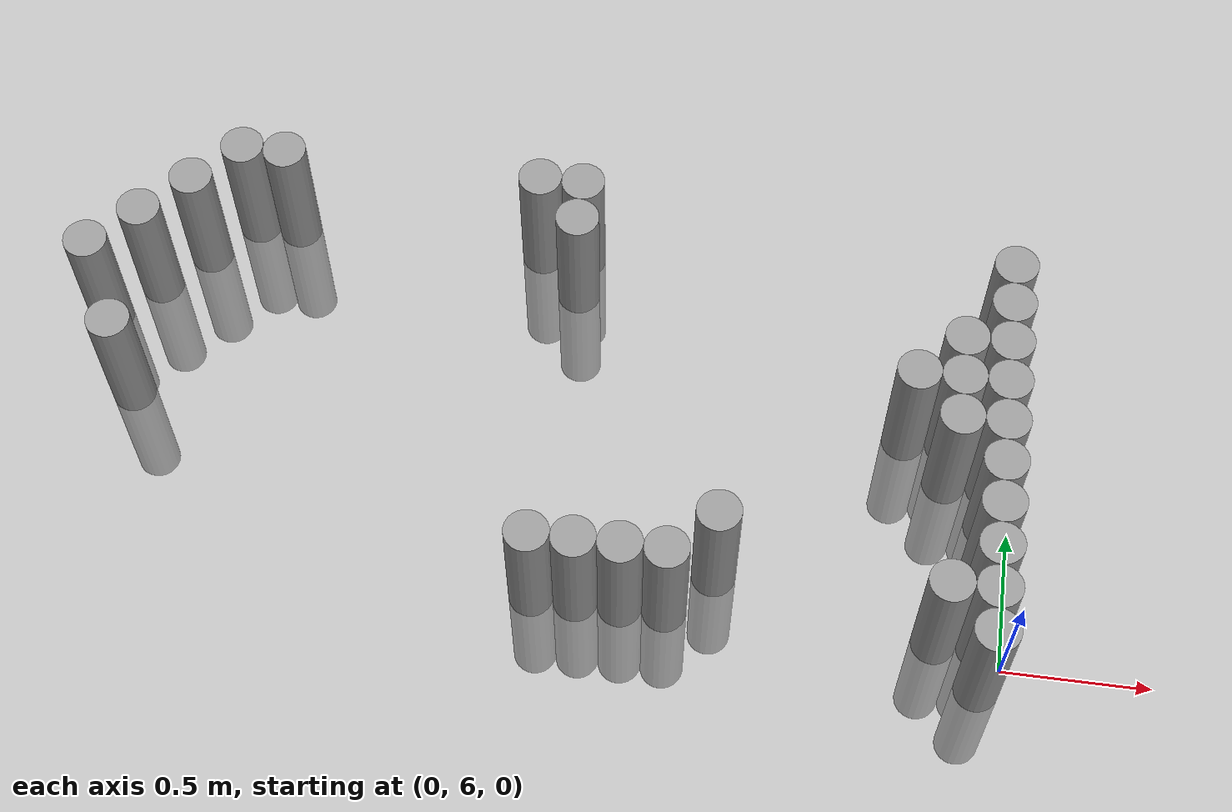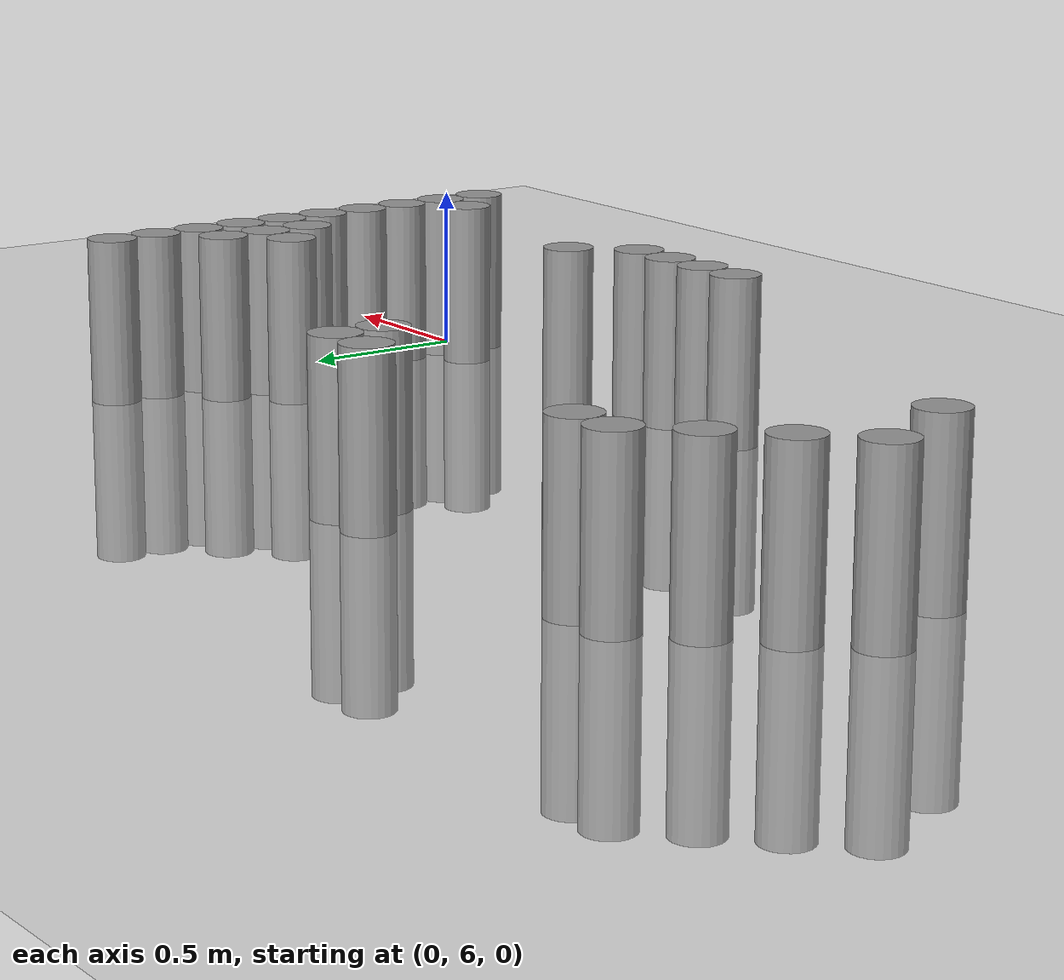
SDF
<sdf version="1.6">
 <world name="default">
  <model name="ground_plane">
   <static>1</static>
   <static>1</static>
   <link name="link">
    <collision name="collision">
     <geometry><plane><normal>0 0 1</normal><size>100 100</size></plane></geometry>
     <surface><friction><ode><mu>100</mu><mu2>50</mu2></ode></friction></surface>
    </collision>
    <visual name="visual">
     <cast_shadows>0</cast_shadows>
     <geometry><plane><normal>0 0 1</normal><size>100 100</size></plane></geometry>
     <material>
      <script><uri>file://media/materials/scripts/gazebo.material</uri><name>Gazebo/Grey</name></script>
     </material>
    </visual>
   </link>
  </model>
  <model name="unit_cylinder_161">
   <static>1</static>
   <pose>-3.225000 6.975000 0.000000 0.000000 0.000000 0.000000</pose>
   <link name="link">
    <inertial>
     <mass>1</mass>
     <inertia><ixx>0.145833</ixx><ixy>0</ixy><ixz>0</ixz><iyy>0.145833</iyy><iyz>0</iyz><izz>0.125</izz></inertia>
    </inertial>
    <collision name="collision">
     <geometry><cylinder><radius>0.075000</radius><length>1</length></cylinder></geometry>
    </collision>
    <visual name="visual">
     <geometry><cylinder><radius>0.075000</radius><length>1</length></cylinder></geometry>
     <material>
      <script><name>Gazebo/Grey</name><uri>file://media/materials/scripts/gazebo.material</uri></script>
     </material>
    </visual>
   </link>
  </model>
  <model name="unit_cylinder_162">
   <static>1</static>
   <pose>-3.075000 6.675000 0.000000 0.000000 0.000000 0.000000</pose>
   <link name="link">
    <inertial>
     <mass>1</mass>
     <inertia><ixx>0.145833</ixx><ixy>0</ixy><ixz>0</ixz><iyy>0.145833</iyy><iyz>0</iyz><izz>0.125</izz></inertia>
    </inertial>
    <collision name="collision">
     <geometry><cylinder><radius>0.075000</radius><length>1</length></cylinder></geometry>
    </collision>
    <visual name="visual">
     <geometry><cylinder><radius>0.075000</radius><length>1</length></cylinder></geometry>
     <material>
      <script><name>Gazebo/Grey</name><uri>file://media/materials/scripts/gazebo.material</uri></script>
     </material>
    </visual>
   </link>
  </model>
  <model name="unit_cylinder_163">
   <static>1</static>
   <pose>-3.075000 7.125000 0.000000 0.000000 0.000000 0.000000</pose>
   <link name="link">
    <inertial>
     <mass>1</mass>
     <inertia><ixx>0.145833</ixx><ixy>0</ixy><ixz>0</ixz><iyy>0.145833</iyy><iyz>0</iyz><izz>0.125</izz></inertia>
    </inertial>
    <collision name="collision">
     <geometry><cylinder><radius>0.075000</radius><length>1</length></cylinder></geometry>
    </collision>
    <visual name="visual">
     <geometry><cylinder><radius>0.075000</radius><length>1</length></cylinder></geometry>
     <material>
      <script><name>Gazebo/Grey</name><uri>file://media/materials/scripts/gazebo.material</uri></script>
     </material>
    </visual>
   </link>
  </model>
  <model name="unit_cylinder_164">
   <static>1</static>
   <pose>-2.925000 7.275000 0.000000 0.000000 0.000000 0.000000</pose>
   <link name="link">
    <inertial>
     <mass>1</mass>
     <inertia><ixx>0.145833</ixx><ixy>0</ixy><ixz>0</ixz><iyy>0.145833</iyy><iyz>0</iyz><izz>0.125</izz></inertia>
    </inertial>
    <collision name="collision">
     <geometry><cylinder><radius>0.075000</radius><length>1</length></cylinder></geometry>
    </collision>
    <visual name="visual">
     <geometry><cylinder><radius>0.075000</radius><length>1</length></cylinder></geometry>
     <material>
      <script><name>Gazebo/Grey</name><uri>file://media/materials/scripts/gazebo.material</uri></script>
     </material>
    </visual>
   </link>
  </model>
  <model name="unit_cylinder_165">
   <static>1</static>
   <pose>-2.775000 7.425000 0.000000 0.000000 0.000000 0.000000</pose>
   <link name="link">
    <inertial>
     <mass>1</mass>
     <inertia><ixx>0.145833</ixx><ixy>0</ixy><ixz>0</ixz><iyy>0.145833</iyy><iyz>0</iyz><izz>0.125</izz></inertia>
    </inertial>
    <collision name="collision">
     <geometry><cylinder><radius>0.075000</radius><length>1</length></cylinder></geometry>
    </collision>
    <visual name="visual">
     <geometry><cylinder><radius>0.075000</radius><length>1</length></cylinder></geometry>
     <material>
      <script><name>Gazebo/Grey</name><uri>file://media/materials/scripts/gazebo.material</uri></script>
     </material>
    </visual>
   </link>
  </model>
  <model name="unit_cylinder_166">
   <static>1</static>
   <pose>-2.625000 7.425000 0.000000 0.000000 0.000000 0.000000</pose>
   <link name="link">
    <inertial>
     <mass>1</mass>
     <inertia><ixx>0.145833</ixx><ixy>0</ixy><ixz>0</ixz><iyy>0.145833</iyy><iyz>0</iyz><izz>0.125</izz></inertia>
    </inertial>
    <collision name="collision">
     <geometry><cylinder><radius>0.075000</radius><length>1</length></cylinder></geometry>
    </collision>
    <visual name="visual">
     <geometry><cylinder><radius>0.075000</radius><length>1</length></cylinder></geometry>
     <material>
      <script><name>Gazebo/Grey</name><uri>file://media/materials/scripts/gazebo.material</uri></script>
     </material>
    </visual>
   </link>
  </model>
  <model name="unit_cylinder_181">
   <static>1</static>
   <pose>-1.725000 7.425000 0.000000 0.000000 0.000000 0.000000</pose>
   <link name="link">
    <inertial>
     <mass>1</mass>
     <inertia><ixx>0.145833</ixx><ixy>0</ixy><ixz>0</ixz><iyy>0.145833</iyy><iyz>0</iyz><izz>0.125</izz></inertia>
    </inertial>
    <collision name="collision">
     <geometry><cylinder><radius>0.075000</radius><length>1</length></cylinder></geometry>
    </collision>
    <visual name="visual">
     <geometry><cylinder><radius>0.075000</radius><length>1</length></cylinder></geometry>
     <material>
      <script><name>Gazebo/Grey</name><uri>file://media/materials/scripts/gazebo.material</uri></script>
     </material>
    </visual>
   </link>
  </model>
  <model name="unit_cylinder_183">
   <static>1</static>
   <pose>-1.575000 6.075000 0.000000 0.000000 0.000000 0.000000</pose>
   <link name="link">
    <inertial>
     <mass>1</mass>
     <inertia><ixx>0.145833</ixx><ixy>0</ixy><ixz>0</ixz><iyy>0.145833</iyy><iyz>0</iyz><izz>0.125</izz></inertia>
    </inertial>
    <collision name="collision">
     <geometry><cylinder><radius>0.075000</radius><length>1</length></cylinder></geometry>
    </collision>
    <visual name="visual">
     <geometry><cylinder><radius>0.075000</radius><length>1</length></cylinder></geometry>
     <material>
      <script><name>Gazebo/Grey</name><uri>file://media/materials/scripts/gazebo.material</uri></script>
     </material>
    </visual>
   </link>
  </model>
  <model name="unit_cylinder_184">
   <static>1</static>
   <pose>-1.575000 7.275000 0.000000 0.000000 0.000000 0.000000</pose>
   <link name="link">
    <inertial>
     <mass>1</mass>
     <inertia><ixx>0.145833</ixx><ixy>0</ixy><ixz>0</ixz><iyy>0.145833</iyy><iyz>0</iyz><izz>0.125</izz></inertia>
    </inertial>
    <collision name="collision">
     <geometry><cylinder><radius>0.075000</radius><length>1</length></cylinder></geometry>
    </collision>
    <visual name="visual">
     <geometry><cylinder><radius>0.075000</radius><length>1</length></cylinder></geometry>
     <material>
      <script><name>Gazebo/Grey</name><uri>file://media/materials/scripts/gazebo.material</uri></script>
     </material>
    </visual>
   </link>
  </model>
  <model name="unit_cylinder_185">
   <static>1</static>
   <pose>-1.575000 7.425000 0.000000 0.000000 0.000000 0.000000</pose>
   <link name="link">
    <inertial>
     <mass>1</mass>
     <inertia><ixx>0.145833</ixx><ixy>0</ixy><ixz>0</ixz><iyy>0.145833</iyy><iyz>0</iyz><izz>0.125</izz></inertia>
    </inertial>
    <collision name="collision">
     <geometry><cylinder><radius>0.075000</radius><length>1</length></cylinder></geometry>
    </collision>
    <visual name="visual">
     <geometry><cylinder><radius>0.075000</radius><length>1</length></cylinder></geometry>
     <material>
      <script><name>Gazebo/Grey</name><uri>file://media/materials/scripts/gazebo.material</uri></script>
     </material>
    </visual>
   </link>
  </model>
  <model name="unit_cylinder_188">
   <static>1</static>
   <pose>-1.425000 6.075000 0.000000 0.000000 0.000000 0.000000</pose>
   <link name="link">
    <inertial>
     <mass>1</mass>
     <inertia><ixx>0.145833</ixx><ixy>0</ixy><ixz>0</ixz><iyy>0.145833</iyy><iyz>0</iyz><izz>0.125</izz></inertia>
    </inertial>
    <collision name="collision">
     <geometry><cylinder><radius>0.075000</radius><length>1</length></cylinder></geometry>
    </collision>
    <visual name="visual">
     <geometry><cylinder><radius>0.075000</radius><length>1</length></cylinder></geometry>
     <material>
      <script><name>Gazebo/Grey</name><uri>file://media/materials/scripts/gazebo.material</uri></script>
     </material>
    </visual>
   </link>
  </model>
  <model name="unit_cylinder_192">
   <static>1</static>
   <pose>-1.275000 6.075000 0.000000 0.000000 0.000000 0.000000</pose>
   <link name="link">
    <inertial>
     <mass>1</mass>
     <inertia><ixx>0.145833</ixx><ixy>0</ixy><ixz>0</ixz><iyy>0.145833</iyy><iyz>0</iyz><izz>0.125</izz></inertia>
    </inertial>
    <collision name="collision">
     <geometry><cylinder><radius>0.075000</radius><length>1</length></cylinder></geometry>
    </collision>
    <visual name="visual">
     <geometry><cylinder><radius>0.075000</radius><length>1</length></cylinder></geometry>
     <material>
      <script><name>Gazebo/Grey</name><uri>file://media/materials/scripts/gazebo.material</uri></script>
     </material>
    </visual>
   </link>
  </model>
  <model name="unit_cylinder_193">
   <static>1</static>
   <pose>-1.125000 6.075000 0.000000 0.000000 0.000000 0.000000</pose>
   <link name="link">
    <inertial>
     <mass>1</mass>
     <inertia><ixx>0.145833</ixx><ixy>0</ixy><ixz>0</ixz><iyy>0.145833</iyy><iyz>0</iyz><izz>0.125</izz></inertia>
    </inertial>
    <collision name="collision">
     <geometry><cylinder><radius>0.075000</radius><length>1</length></cylinder></geometry>
    </collision>
    <visual name="visual">
     <geometry><cylinder><radius>0.075000</radius><length>1</length></cylinder></geometry>
     <material>
      <script><name>Gazebo/Grey</name><uri>file://media/materials/scripts/gazebo.material</uri></script>
     </material>
    </visual>
   </link>
  </model>
  <model name="unit_cylinder_194">
   <static>1</static>
   <pose>-0.975000 6.225000 0.000000 0.000000 0.000000 0.000000</pose>
   <link name="link">
    <inertial>
     <mass>1</mass>
     <inertia><ixx>0.145833</ixx><ixy>0</ixy><ixz>0</ixz><iyy>0.145833</iyy><iyz>0</iyz><izz>0.125</izz></inertia>
    </inertial>
    <collision name="collision">
     <geometry><cylinder><radius>0.075000</radius><length>1</length></cylinder></geometry>
    </collision>
    <visual name="visual">
     <geometry><cylinder><radius>0.075000</radius><length>1</length></cylinder></geometry>
     <material>
      <script><name>Gazebo/Grey</name><uri>file://media/materials/scripts/gazebo.material</uri></script>
     </material>
    </visual>
   </link>
  </model>
  <model name="unit_cylinder_195">
   <static>1</static>
   <pose>-0.375000 6.825000 0.000000 0.000000 0.000000 0.000000</pose>
   <link name="link">
    <inertial>
     <mass>1</mass>
     <inertia><ixx>0.145833</ixx><ixy>0</ixy><ixz>0</ixz><iyy>0.145833</iyy><iyz>0</iyz><izz>0.125</izz></inertia>
    </inertial>
    <collision name="collision">
     <geometry><cylinder><radius>0.075000</radius><length>1</length></cylinder></geometry>
    </collision>
    <visual name="visual">
     <geometry><cylinder><radius>0.075000</radius><length>1</length></cylinder></geometry>
     <material>
      <script><name>Gazebo/Grey</name><uri>file://media/materials/scripts/gazebo.material</uri></script>
     </material>
    </visual>
   </link>
  </model>
  <model name="unit_cylinder_196">
   <static>1</static>
   <pose>-0.225000 6.075000 0.000000 0.000000 0.000000 0.000000</pose>
   <link name="link">
    <inertial>
     <mass>1</mass>
     <inertia><ixx>0.145833</ixx><ixy>0</ixy><ixz>0</ixz><iyy>0.145833</iyy><iyz>0</iyz><izz>0.125</izz></inertia>
    </inertial>
    <collision name="collision">
     <geometry><cylinder><radius>0.075000</radius><length>1</length></cylinder></geometry>
    </collision>
    <visual name="visual">
     <geometry><cylinder><radius>0.075000</radius><length>1</length></cylinder></geometry>
     <material>
      <script><name>Gazebo/Grey</name><uri>file://media/materials/scripts/gazebo.material</uri></script>
     </material>
    </visual>
   </link>
  </model>
  <model name="unit_cylinder_197">
   <static>1</static>
   <pose>-0.225000 6.675000 0.000000 0.000000 0.000000 0.000000</pose>
   <link name="link">
    <inertial>
     <mass>1</mass>
     <inertia><ixx>0.145833</ixx><ixy>0</ixy><ixz>0</ixz><iyy>0.145833</iyy><iyz>0</iyz><izz>0.125</izz></inertia>
    </inertial>
    <collision name="collision">
     <geometry><cylinder><radius>0.075000</radius><length>1</length></cylinder></geometry>
    </collision>
    <visual name="visual">
     <geometry><cylinder><radius>0.075000</radius><length>1</length></cylinder></geometry>
     <material>
      <script><name>Gazebo/Grey</name><uri>file://media/materials/scripts/gazebo.material</uri></script>
     </material>
    </visual>
   </link>
  </model>
  <model name="unit_cylinder_198">
   <static>1</static>
   <pose>-0.225000 6.825000 0.000000 0.000000 0.000000 0.000000</pose>
   <link name="link">
    <inertial>
     <mass>1</mass>
     <inertia><ixx>0.145833</ixx><ixy>0</ixy><ixz>0</ixz><iyy>0.145833</iyy><iyz>0</iyz><izz>0.125</izz></inertia>
    </inertial>
    <collision name="collision">
     <geometry><cylinder><radius>0.075000</radius><length>1</length></cylinder></geometry>
    </collision>
    <visual name="visual">
     <geometry><cylinder><radius>0.075000</radius><length>1</length></cylinder></geometry>
     <material>
      <script><name>Gazebo/Grey</name><uri>file://media/materials/scripts/gazebo.material</uri></script>
     </material>
    </visual>
   </link>
  </model>
  <model name="unit_cylinder_199">
   <static>1</static>
   <pose>-0.225000 6.975000 0.000000 0.000000 0.000000 0.000000</pose>
   <link name="link">
    <inertial>
     <mass>1</mass>
     <inertia><ixx>0.145833</ixx><ixy>0</ixy><ixz>0</ixz><iyy>0.145833</iyy><iyz>0</iyz><izz>0.125</izz></inertia>
    </inertial>
    <collision name="collision">
     <geometry><cylinder><radius>0.075000</radius><length>1</length></cylinder></geometry>
    </collision>
    <visual name="visual">
     <geometry><cylinder><radius>0.075000</radius><length>1</length></cylinder></geometry>
     <material>
      <script><name>Gazebo/Grey</name><uri>file://media/materials/scripts/gazebo.material</uri></script>
     </material>
    </visual>
   </link>
  </model>
  <model name="unit_cylinder_210">
   <static>1</static>
   <pose>-0.075000 5.925000 0.000000 0.000000 0.000000 0.000000</pose>
   <link name="link">
    <inertial>
     <mass>1</mass>
     <inertia><ixx>0.145833</ixx><ixy>0</ixy><ixz>0</ixz><iyy>0.145833</iyy><iyz>0</iyz><izz>0.125</izz></inertia>
    </inertial>
    <collision name="collision">
     <geometry><cylinder><radius>0.075000</radius><length>1</length></cylinder></geometry>
    </collision>
    <visual name="visual">
     <geometry><cylinder><radius>0.075000</radius><length>1</length></cylinder></geometry>
     <material>
      <script><name>Gazebo/Grey</name><uri>file://media/materials/scripts/gazebo.material</uri></script>
     </material>
    </visual>
   </link>
  </model>
  <model name="unit_cylinder_211">
   <static>1</static>
   <pose>-0.075000 6.075000 0.000000 0.000000 0.000000 0.000000</pose>
   <link name="link">
    <inertial>
     <mass>1</mass>
     <inertia><ixx>0.145833</ixx><ixy>0</ixy><ixz>0</ixz><iyy>0.145833</iyy><iyz>0</iyz><izz>0.125</izz></inertia>
    </inertial>
    <collision name="collision">
     <geometry><cylinder><radius>0.075000</radius><length>1</length></cylinder></geometry>
    </collision>
    <visual name="visual">
     <geometry><cylinder><radius>0.075000</radius><length>1</length></cylinder></geometry>
     <material>
      <script><name>Gazebo/Grey</name><uri>file://media/materials/scripts/gazebo.material</uri></script>
     </material>
    </visual>
   </link>
  </model>
  <model name="unit_cylinder_212">
   <static>1</static>
   <pose>-0.075000 6.225000 0.000000 0.000000 0.000000 0.000000</pose>
   <link name="link">
    <inertial>
     <mass>1</mass>
     <inertia><ixx>0.145833</ixx><ixy>0</ixy><ixz>0</ixz><iyy>0.145833</iyy><iyz>0</iyz><izz>0.125</izz></inertia>
    </inertial>
    <collision name="collision">
     <geometry><cylinder><radius>0.075000</radius><length>1</length></cylinder></geometry>
    </collision>
    <visual name="visual">
     <geometry><cylinder><radius>0.075000</radius><length>1</length></cylinder></geometry>
     <material>
      <script><name>Gazebo/Grey</name><uri>file://media/materials/scripts/gazebo.material</uri></script>
     </material>
    </visual>
   </link>
  </model>
  <model name="unit_cylinder_213">
   <static>1</static>
   <pose>-0.075000 6.375000 0.000000 0.000000 0.000000 0.000000</pose>
   <link name="link">
    <inertial>
     <mass>1</mass>
     <inertia><ixx>0.145833</ixx><ixy>0</ixy><ixz>0</ixz><iyy>0.145833</iyy><iyz>0</iyz><izz>0.125</izz></inertia>
    </inertial>
    <collision name="collision">
     <geometry><cylinder><radius>0.075000</radius><length>1</length></cylinder></geometry>
    </collision>
    <visual name="visual">
     <geometry><cylinder><radius>0.075000</radius><length>1</length></cylinder></geometry>
     <material>
      <script><name>Gazebo/Grey</name><uri>file://media/materials/scripts/gazebo.material</uri></script>
     </material>
    </visual>
   </link>
  </model>
  <model name="unit_cylinder_214">
   <static>1</static>
   <pose>-0.075000 6.525000 0.000000 0.000000 0.000000 0.000000</pose>
   <link name="link">
    <inertial>
     <mass>1</mass>
     <inertia><ixx>0.145833</ixx><ixy>0</ixy><ixz>0</ixz><iyy>0.145833</iyy><iyz>0</iyz><izz>0.125</izz></inertia>
    </inertial>
    <collision name="collision">
     <geometry><cylinder><radius>0.075000</radius><length>1</length></cylinder></geometry>
    </collision>
    <visual name="visual">
     <geometry><cylinder><radius>0.075000</radius><length>1</length></cylinder></geometry>
     <material>
      <script><name>Gazebo/Grey</name><uri>file://media/materials/scripts/gazebo.material</uri></script>
     </material>
    </visual>
   </link>
  </model>
  <model name="unit_cylinder_215">
   <static>1</static>
   <pose>-0.075000 6.675000 0.000000 0.000000 0.000000 0.000000</pose>
   <link name="link">
    <inertial>
     <mass>1</mass>
     <inertia><ixx>0.145833</ixx><ixy>0</ixy><ixz>0</ixz><iyy>0.145833</iyy><iyz>0</iyz><izz>0.125</izz></inertia>
    </inertial>
    <collision name="collision">
     <geometry><cylinder><radius>0.075000</radius><length>1</length></cylinder></geometry>
    </collision>
    <visual name="visual">
     <geometry><cylinder><radius>0.075000</radius><length>1</length></cylinder></geometry>
     <material>
      <script><name>Gazebo/Grey</name><uri>file://media/materials/scripts/gazebo.material</uri></script>
     </material>
    </visual>
   </link>
  </model>
  <model name="unit_cylinder_216">
   <static>1</static>
   <pose>-0.075000 6.825000 0.000000 0.000000 0.000000 0.000000</pose>
   <link name="link">
    <inertial>
     <mass>1</mass>
     <inertia><ixx>0.145833</ixx><ixy>0</ixy><ixz>0</ixz><iyy>0.145833</iyy><iyz>0</iyz><izz>0.125</izz></inertia>
    </inertial>
    <collision name="collision">
     <geometry><cylinder><radius>0.075000</radius><length>1</length></cylinder></geometry>
    </collision>
    <visual name="visual">
     <geometry><cylinder><radius>0.075000</radius><length>1</length></cylinder></geometry>
     <material>
      <script><name>Gazebo/Grey</name><uri>file://media/materials/scripts/gazebo.material</uri></script>
     </material>
    </visual>
   </link>
  </model>
  <model name="unit_cylinder_217">
   <static>1</static>
   <pose>-0.075000 6.975000 0.000000 0.000000 0.000000 0.000000</pose>
   <link name="link">
    <inertial>
     <mass>1</mass>
     <inertia><ixx>0.145833</ixx><ixy>0</ixy><ixz>0</ixz><iyy>0.145833</iyy><iyz>0</iyz><izz>0.125</izz></inertia>
    </inertial>
    <collision name="collision">
     <geometry><cylinder><radius>0.075000</radius><length>1</length></cylinder></geometry>
    </collision>
    <visual name="visual">
     <geometry><cylinder><radius>0.075000</radius><length>1</length></cylinder></geometry>
     <material>
      <script><name>Gazebo/Grey</name><uri>file://media/materials/scripts/gazebo.material</uri></script>
     </material>
    </visual>
   </link>
  </model>
  <model name="unit_cylinder_218">
   <static>1</static>
   <pose>-0.075000 7.125000 0.000000 0.000000 0.000000 0.000000</pose>
   <link name="link">
    <inertial>
     <mass>1</mass>
     <inertia><ixx>0.145833</ixx><ixy>0</ixy><ixz>0</ixz><iyy>0.145833</iyy><iyz>0</iyz><izz>0.125</izz></inertia>
    </inertial>
    <collision name="collision">
     <geometry><cylinder><radius>0.075000</radius><length>1</length></cylinder></geometry>
    </collision>
    <visual name="visual">
     <geometry><cylinder><radius>0.075000</radius><length>1</length></cylinder></geometry>
     <material>
      <script><name>Gazebo/Grey</name><uri>file://media/materials/scripts/gazebo.material</uri></script>
     </material>
    </visual>
   </link>
  </model>
  <model name="unit_cylinder_219">
   <static>1</static>
   <pose>-0.075000 7.275000 0.000000 0.000000 0.000000 0.000000</pose>
   <link name="link">
    <inertial>
     <mass>1</mass>
     <inertia><ixx>0.145833</ixx><ixy>0</ixy><ixz>0</ixz><iyy>0.145833</iyy><iyz>0</iyz><izz>0.125</izz></inertia>
    </inertial>
    <collision name="collision">
     <geometry><cylinder><radius>0.075000</radius><length>1</length></cylinder></geometry>
    </collision>
    <visual name="visual">
     <geometry><cylinder><radius>0.075000</radius><length>1</length></cylinder></geometry>
     <material>
      <script><name>Gazebo/Grey</name><uri>file://media/materials/scripts/gazebo.material</uri></script>
     </material>
    </visual>
   </link>
  </model>
 </world>
</sdf>
